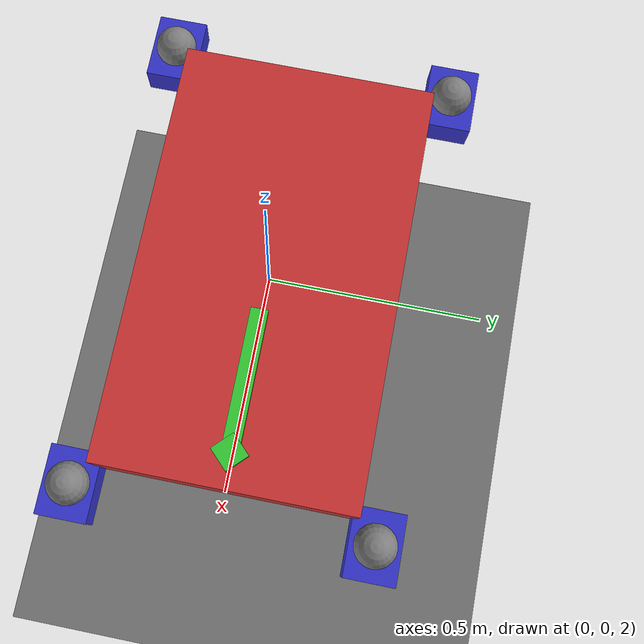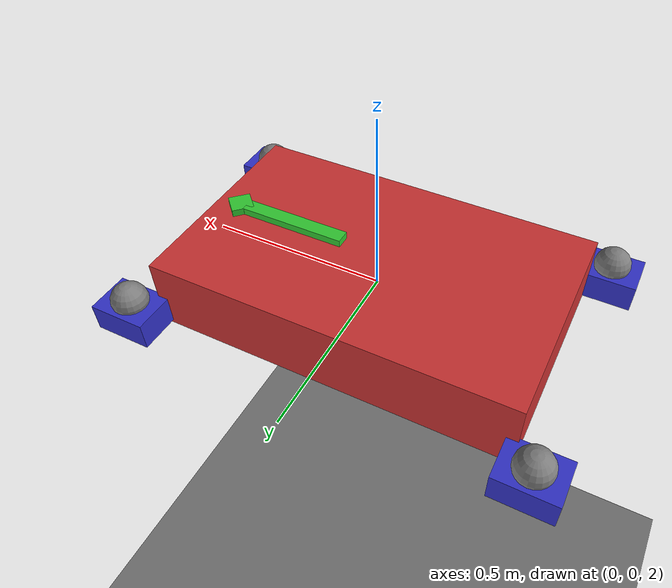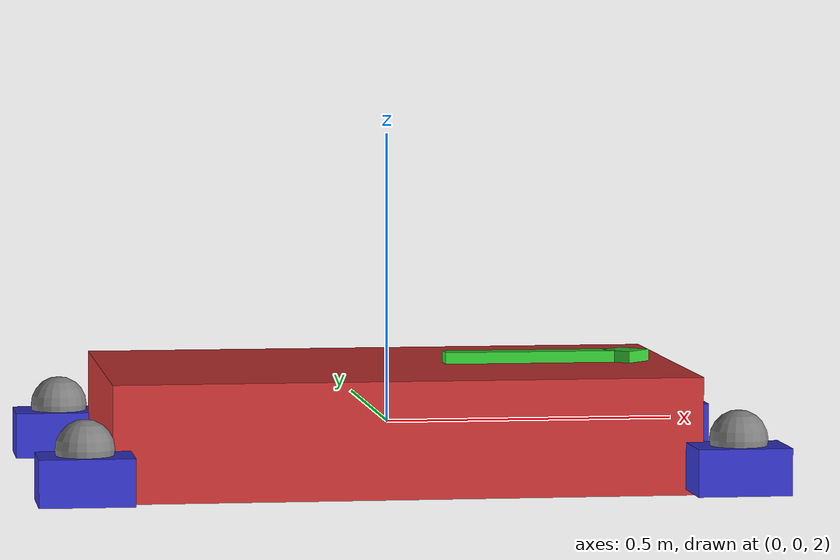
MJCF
<mujoco model="flying_car">
  <option gravity="0 0 -9.81" timestep="0.001"/>

  <default>
    <default class="thruster">
      <geom contype="0" conaffinity="0"/>
    </default>
  </default>

  <asset>
    <texture type="skybox" builtin="gradient" rgb1="0.6 0.8 1.0" rgb2="0 0 0" width="512" height="512"/>
    <texture name="grid" type="2d" builtin="checker" rgb1="0.4 0.4 0.4" rgb2="0.5 0.5 0.5" width="512" height="512"/>
    <material name="grid" texture="grid" texrepeat="8 8" reflectance="0.1"/>
    <material name="body_mat" rgba="0.8 0.2 0.2 1"/>
    <material name="thruster_mat" rgba="0.2 0.2 0.8 1"/>
    <material name="arrow_mat" rgba="0.2 0.8 0.2 1"/>
  </asset>

  <worldbody>
    <!-- Diffuse light -->
    <light name="diffuse_light" pos="0 0 50" dir="0 0 -1" diffuse="0.3 0.3 0.3" specular="0.2 0.2 0.2" directional="true"/>

    <!-- Ground plane -->
    <geom name="ground" type="plane" size="10 10 0.1" material="grid"/>

    <!-- Flying car body -->
    <body name="chassis" pos="0 0 2">
      <freejoint name="root"/>
      <inertial pos="0 0 0" mass="40" diaginertia="1 2 2"/>

      <!-- Main body: rectangular prism -->
      <geom name="body" type="box" size="0.5 0.3 0.1" material="body_mat"/>

      <!-- Forward arrow indicator -->
      <geom name="arrow_shaft" type="box" pos="0.25 0 0.11" size="0.15 0.02 0.01" material="arrow_mat"/>
      <geom name="arrow_head" type="box" pos="0.42 0 0.11" size="0.03 0.03 0.01" euler="0 0 45" material="arrow_mat"/>

      <!-- Thruster 1: front-right -->
      <body name="thruster_fr_pitch_body" pos="0.55 -0.35 0">
        <joint name="thruster_fr_pitch" type="hinge" axis="0 1 0" limited="true" range="-45 45"/>
        <geom name="thruster_fr_pitch_geom" class="thruster" type="box" pos="0 0 0" size="0.02 0.04 0.02" mass="4" material="thruster_mat"/>
        <body name="thruster_fr_roll_body" pos="0 0 0">
          <joint name="thruster_fr_roll" type="hinge" axis="1 0 0" limited="true" range="-45 45"/>
          <site name="thruster_fr" pos="0 0 0" size="0.05"/>
          <geom name="thruster_fr_geom" class="thruster" type="box" pos="0 0 -0.05" size="0.08 0.06 0.04" mass="5" material="thruster_mat"/>
        </body>
      </body>

      <!-- Thruster 2: front-left -->
      <body name="thruster_fl_pitch_body" pos="0.55 0.35 0">
        <joint name="thruster_fl_pitch" type="hinge" axis="0 1 0" limited="true" range="-45 45"/>
        <geom name="thruster_fl_pitch_geom" class="thruster" type="box" pos="0 0 0" size="0.02 0.04 0.02" mass="4" material="thruster_mat"/>
        <body name="thruster_fl_roll_body" pos="0 0 0">
          <joint name="thruster_fl_roll" type="hinge" axis="1 0 0" limited="true" range="-45 45"/>
          <site name="thruster_fl" pos="0 0 0" size="0.05"/>
          <geom name="thruster_fl_geom" class="thruster" type="box" pos="0 0 -0.05" size="0.08 0.06 0.04" mass="5" material="thruster_mat"/>
        </body>
      </body>

      <!-- Thruster 3: rear-right -->
      <body name="thruster_rr_pitch_body" pos="-0.55 -0.35 0">
        <joint name="thruster_rr_pitch" type="hinge" axis="0 1 0" limited="true" range="-45 45"/>
        <geom name="thruster_rr_pitch_geom" class="thruster" type="box" pos="0 0 0" size="0.02 0.04 0.02" mass="4" material="thruster_mat"/>
        <body name="thruster_rr_roll_body" pos="0 0 0">
          <joint name="thruster_rr_roll" type="hinge" axis="1 0 0" limited="true" range="-45 45"/>
          <site name="thruster_rr" pos="0 0 0" size="0.05"/>
          <geom name="thruster_rr_geom" class="thruster" type="box" pos="0 0 -0.05" size="0.08 0.06 0.04" mass="5" material="thruster_mat"/>
        </body>
      </body>

      <!-- Thruster 4: rear-left -->
      <body name="thruster_rl_pitch_body" pos="-0.55 0.35 0">
        <joint name="thruster_rl_pitch" type="hinge" axis="0 1 0" limited="true" range="-45 45"/>
        <geom name="thruster_rl_pitch_geom" class="thruster" type="box" pos="0 0 0" size="0.02 0.04 0.02" mass="4" material="thruster_mat"/>
        <body name="thruster_rl_roll_body" pos="0 0 0">
          <joint name="thruster_rl_roll" type="hinge" axis="1 0 0" limited="true" range="-45 45"/>
          <site name="thruster_rl" pos="0 0 0" size="0.05"/>
          <geom name="thruster_rl_geom" class="thruster" type="box" pos="0 0 -0.05" size="0.08 0.06 0.04" mass="5" material="thruster_mat"/>
        </body>
      </body>
    </body>
  </worldbody>

  <actuator>
    <!-- Thrusters apply force in the +z direction (up) in body frame -->
    <general name="thrust_fr" site="thruster_fr" gear="0 0 1 0 0 0" ctrllimited="true" ctrlrange="0 1000"/>
    <general name="thrust_fl" site="thruster_fl" gear="0 0 1 0 0 0" ctrllimited="true" ctrlrange="0 1000"/>
    <general name="thrust_rr" site="thruster_rr" gear="0 0 1 0 0 0" ctrllimited="true" ctrlrange="0 1000"/>
    <general name="thrust_rl" site="thruster_rl" gear="0 0 1 0 0 0" ctrllimited="true" ctrlrange="0 1000"/>

    <!-- Thruster gimbal actuators (position control) -->
    <position name="pitch_fr" joint="thruster_fr_pitch" kp="500" kv="5" ctrlrange="-0.785 0.785"/>
    <position name="roll_fr" joint="thruster_fr_roll" kp="500" kv="5" ctrlrange="-0.785 0.785"/>
    <position name="pitch_fl" joint="thruster_fl_pitch" kp="500" kv="5" ctrlrange="-0.785 0.785"/>
    <position name="roll_fl" joint="thruster_fl_roll" kp="500" kv="5" ctrlrange="-0.785 0.785"/>
    <position name="pitch_rr" joint="thruster_rr_pitch" kp="500" kv="5" ctrlrange="-0.785 0.785"/>
    <position name="roll_rr" joint="thruster_rr_roll" kp="500" kv="5" ctrlrange="-0.785 0.785"/>
    <position name="pitch_rl" joint="thruster_rl_pitch" kp="500" kv="5" ctrlrange="-0.785 0.785"/>
    <position name="roll_rl" joint="thruster_rl_roll" kp="500" kv="5" ctrlrange="-0.785 0.785"/>
  </actuator>

  <sensor>
    <!-- IMU sensors -->
    <accelerometer name="imu_accel" site="thruster_fr"/>
    <gyro name="imu_gyro" site="thruster_fr"/>
    <framequat name="orientation" objtype="body" objname="chassis"/>
    <framepos name="position" objtype="body" objname="chassis"/>
    <framexaxis name="xaxis" objtype="body" objname="chassis"/>
    <frameyaxis name="yaxis" objtype="body" objname="chassis"/>
    <framezaxis name="zaxis" objtype="body" objname="chassis"/>
  </sensor>
</mujoco>
